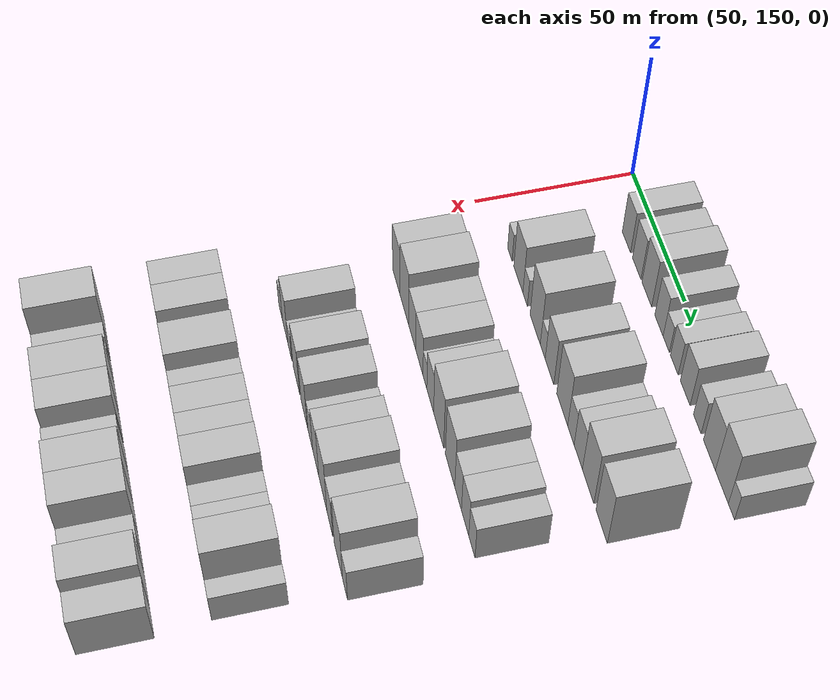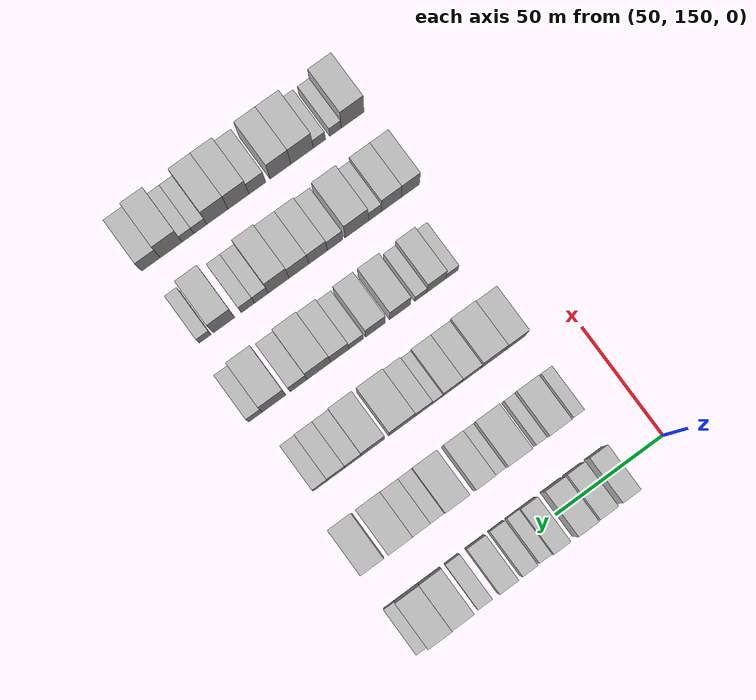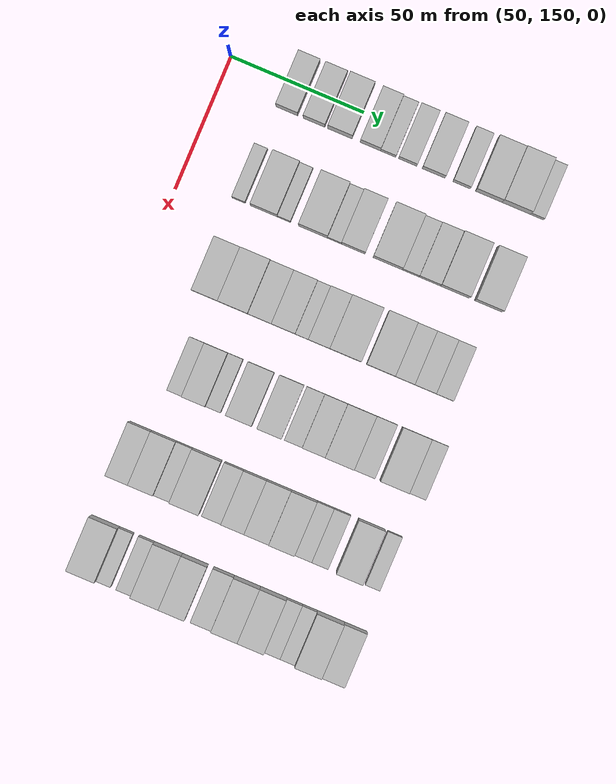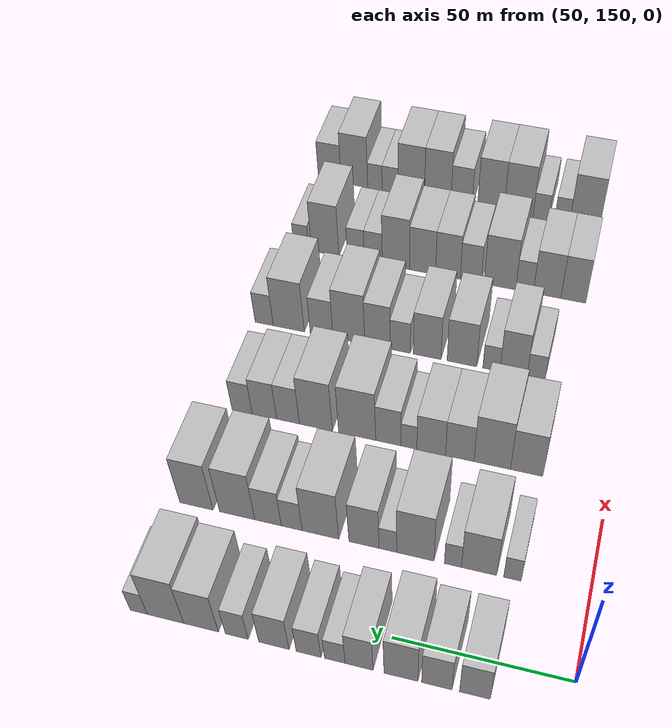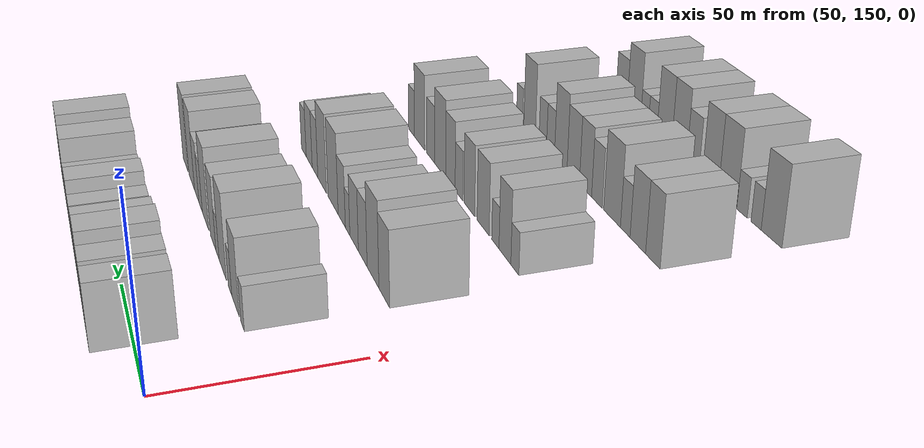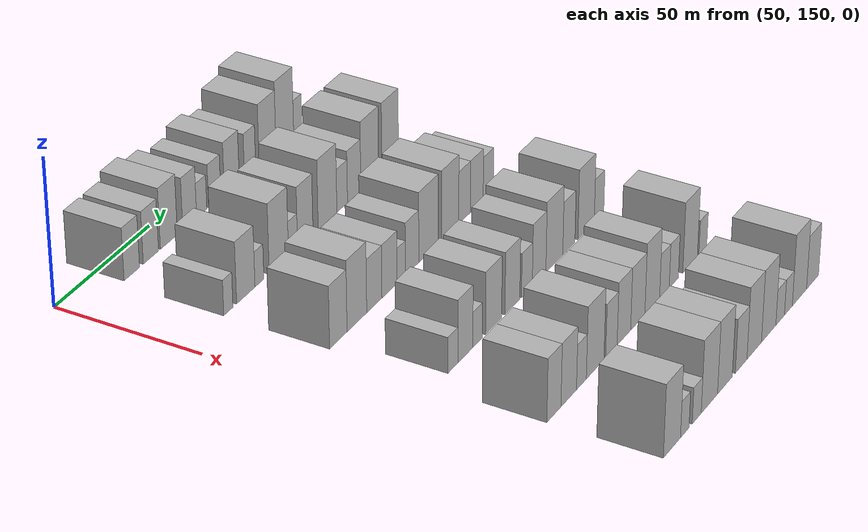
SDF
<sdf version="1.6">
 <world name="default">
  <model name="building_77">
   <static>1</static>
   <pose>50.0000 175.2107 0 0.000000 0.000000 0.000000</pose>
   <link name="link">
    <pose>0 0 9.00 0 0 0</pose>
    <collision name="collision"><geometry><box><size>20.0000 8.1973 18.0000</size></box></geometry></collision>
    <visual name="visual">
     <cast_shadows>0</cast_shadows>
     <geometry><box><size>20.0000 8.1973 18.0000</size></box></geometry>
     <material>
      <script>
       <uri>model://HANNAS_wall/materials/scripts</uri>
       <uri>model://HANNAS_wall/materials/textures</uri>
       <name>vrc/HANNAS_wall</name>
      </script>
     </material>
    </visual>
   </link>
  </model>
  <model name="building_78">
   <static>1</static>
   <pose>50.0000 185.4106 0 0.000000 0.000000 0.000000</pose>
   <link name="link">
    <pose>0 0 9.00 0 0 0</pose>
    <collision name="collision"><geometry><box><size>20.0000 8.2025 18.0000</size></box></geometry></collision>
    <visual name="visual">
     <cast_shadows>0</cast_shadows>
     <geometry><box><size>20.0000 8.2025 18.0000</size></box></geometry>
     <material>
      <script>
       <uri>model://HANNAS_wall/materials/scripts</uri>
       <uri>model://HANNAS_wall/materials/textures</uri>
       <name>vrc/HANNAS_wall</name>
      </script>
     </material>
    </visual>
   </link>
  </model>
  <model name="building_79">
   <static>1</static>
   <pose>50.0000 195.1301 0 0.000000 0.000000 0.000000</pose>
   <link name="link">
    <pose>0 0 10.50 0 0 0</pose>
    <collision name="collision"><geometry><box><size>20.0000 9.2365 21.0000</size></box></geometry></collision>
    <visual name="visual">
     <cast_shadows>0</cast_shadows>
     <geometry><box><size>20.0000 9.2365 21.0000</size></box></geometry>
     <material>
      <script>
       <uri>model://HANNAS_wall/materials/scripts</uri>
       <uri>model://HANNAS_wall/materials/textures</uri>
       <name>vrc/HANNAS_wall</name>
      </script>
     </material>
    </visual>
   </link>
  </model>
  <model name="building_80">
   <static>1</static>
   <pose>50.0000 206.5927 0 0.000000 0.000000 0.000000</pose>
   <link name="link">
    <pose>0 0 9.00 0 0 0</pose>
    <collision name="collision"><geometry><box><size>20.0000 7.6885 18.0000</size></box></geometry></collision>
    <visual name="visual">
     <cast_shadows>0</cast_shadows>
     <geometry><box><size>20.0000 7.6885 18.0000</size></box></geometry>
     <material>
      <script>
       <uri>model://HANNAS_wall/materials/scripts</uri>
       <uri>model://HANNAS_wall/materials/textures</uri>
       <name>vrc/HANNAS_wall</name>
      </script>
     </material>
    </visual>
   </link>
  </model>
  <model name="building_81">
   <static>1</static>
   <pose>50.0000 213.2928 0 0.000000 0.000000 0.000000</pose>
   <link name="link">
    <pose>0 0 6.00 0 0 0</pose>
    <collision name="collision"><geometry><box><size>20.0000 5.7117 12.0000</size></box></geometry></collision>
    <visual name="visual">
     <cast_shadows>0</cast_shadows>
     <geometry><box><size>20.0000 5.7117 12.0000</size></box></geometry>
     <material>
      <script>
       <uri>model://HANNAS_wall/materials/scripts</uri>
       <uri>model://HANNAS_wall/materials/textures</uri>
       <name>vrc/HANNAS_wall</name>
      </script>
     </material>
    </visual>
   </link>
  </model>
  <model name="building_82">
   <static>1</static>
   <pose>50.0000 220.6034 0 0.000000 0.000000 0.000000</pose>
   <link name="link">
    <pose>0 0 7.50 0 0 0</pose>
    <collision name="collision"><geometry><box><size>20.0000 6.9096 15.0000</size></box></geometry></collision>
    <visual name="visual">
     <cast_shadows>0</cast_shadows>
     <geometry><box><size>20.0000 6.9096 15.0000</size></box></geometry>
     <material>
      <script>
       <uri>model://HANNAS_wall/materials/scripts</uri>
       <uri>model://HANNAS_wall/materials/textures</uri>
       <name>vrc/HANNAS_wall</name>
      </script>
     </material>
    </visual>
   </link>
  </model>
  <model name="building_83">
   <static>1</static>
   <pose>50.0000 230.3329 0 0.000000 0.000000 0.000000</pose>
   <link name="link">
    <pose>0 0 9.00 0 0 0</pose>
    <collision name="collision"><geometry><box><size>20.0000 8.5494 18.0000</size></box></geometry></collision>
    <visual name="visual">
     <cast_shadows>0</cast_shadows>
     <geometry><box><size>20.0000 8.5494 18.0000</size></box></geometry>
     <material>
      <script>
       <uri>model://HANNAS_wall/materials/scripts</uri>
       <uri>model://HANNAS_wall/materials/textures</uri>
       <name>vrc/HANNAS_wall</name>
      </script>
     </material>
    </visual>
   </link>
  </model>
  <model name="building_84">
   <static>1</static>
   <pose>50.0000 240.8622 0 0.000000 0.000000 0.000000</pose>
   <link name="link">
    <pose>0 0 7.50 0 0 0</pose>
    <collision name="collision"><geometry><box><size>20.0000 6.5090 15.0000</size></box></geometry></collision>
    <visual name="visual">
     <cast_shadows>0</cast_shadows>
     <geometry><box><size>20.0000 6.5090 15.0000</size></box></geometry>
     <material>
      <script>
       <uri>model://HANNAS_wall/materials/scripts</uri>
       <uri>model://HANNAS_wall/materials/textures</uri>
       <name>vrc/HANNAS_wall</name>
      </script>
     </material>
    </visual>
   </link>
  </model>
  <model name="building_85">
   <static>1</static>
   <pose>50.0000 251.1097 0 0.000000 0.000000 0.000000</pose>
   <link name="link">
    <pose>0 0 10.50 0 0 0</pose>
    <collision name="collision"><geometry><box><size>20.0000 9.9861 21.0000</size></box></geometry></collision>
    <visual name="visual">
     <cast_shadows>0</cast_shadows>
     <geometry><box><size>20.0000 9.9861 21.0000</size></box></geometry>
     <material>
      <script>
       <uri>model://HANNAS_wall/materials/scripts</uri>
       <uri>model://HANNAS_wall/materials/textures</uri>
       <name>vrc/HANNAS_wall</name>
      </script>
     </material>
    </visual>
   </link>
  </model>
  <model name="building_86">
   <static>1</static>
   <pose>50.0000 261.4041 0 0.000000 0.000000 0.000000</pose>
   <link name="link">
    <pose>0 0 12.00 0 0 0</pose>
    <collision name="collision"><geometry><box><size>20.0000 10.6026 24.0000</size></box></geometry></collision>
    <visual name="visual">
     <cast_shadows>0</cast_shadows>
     <geometry><box><size>20.0000 10.6026 24.0000</size></box></geometry>
     <material>
      <script>
       <uri>model://HANNAS_wall/materials/scripts</uri>
       <uri>model://HANNAS_wall/materials/textures</uri>
       <name>vrc/HANNAS_wall</name>
      </script>
     </material>
    </visual>
   </link>
  </model>
  <model name="building_87">
   <static>1</static>
   <pose>50.0000 269.1859 0 0.000000 0.000000 0.000000</pose>
   <link name="link">
    <pose>0 0 6.00 0 0 0</pose>
    <collision name="collision"><geometry><box><size>20.0000 4.9610 12.0000</size></box></geometry></collision>
    <visual name="visual">
     <cast_shadows>0</cast_shadows>
     <geometry><box><size>20.0000 4.9610 12.0000</size></box></geometry>
     <material>
      <script>
       <uri>model://HANNAS_wall/materials/scripts</uri>
       <uri>model://HANNAS_wall/materials/textures</uri>
       <name>vrc/HANNAS_wall</name>
      </script>
     </material>
    </visual>
   </link>
  </model>
  <model name="building_210">
   <static>1</static>
   <pose>85.0000 171.9448 0 0.000000 0.000000 0.000000</pose>
   <link name="link">
    <pose>0 0 6.00 0 0 0</pose>
    <collision name="collision"><geometry><box><size>20.0000 4.9661 12.0000</size></box></geometry></collision>
    <visual name="visual">
     <cast_shadows>0</cast_shadows>
     <geometry><box><size>20.0000 4.9661 12.0000</size></box></geometry>
     <material>
      <script>
       <uri>model://HANNAS_wall/materials/scripts</uri>
       <uri>model://HANNAS_wall/materials/textures</uri>
       <name>vrc/HANNAS_wall</name>
      </script>
     </material>
    </visual>
   </link>
  </model>
  <model name="building_211">
   <static>1</static>
   <pose>85.0000 181.4668 0 0.000000 0.000000 0.000000</pose>
   <link name="link">
    <pose>0 0 10.50 0 0 0</pose>
    <collision name="collision"><geometry><box><size>20.0000 10.0780 21.0000</size></box></geometry></collision>
    <visual name="visual">
     <cast_shadows>0</cast_shadows>
     <geometry><box><size>20.0000 10.0780 21.0000</size></box></geometry>
     <material>
      <script>
       <uri>model://HANNAS_wall/materials/scripts</uri>
       <uri>model://HANNAS_wall/materials/textures</uri>
       <name>vrc/HANNAS_wall</name>
      </script>
     </material>
    </visual>
   </link>
  </model>
  <model name="building_212">
   <static>1</static>
   <pose>85.0000 188.9668 0 0.000000 0.000000 0.000000</pose>
   <link name="link">
    <pose>0 0 6.00 0 0 0</pose>
    <collision name="collision"><geometry><box><size>20.0000 4.9221 12.0000</size></box></geometry></collision>
    <visual name="visual">
     <cast_shadows>0</cast_shadows>
     <geometry><box><size>20.0000 4.9221 12.0000</size></box></geometry>
     <material>
      <script>
       <uri>model://HANNAS_wall/materials/scripts</uri>
       <uri>model://HANNAS_wall/materials/textures</uri>
       <name>vrc/HANNAS_wall</name>
      </script>
     </material>
    </visual>
   </link>
  </model>
  <model name="building_213">
   <static>1</static>
   <pose>85.0000 199.8682 0 0.000000 0.000000 0.000000</pose>
   <link name="link">
    <pose>0 0 12.00 0 0 0</pose>
    <collision name="collision"><geometry><box><size>20.0000 10.8807 24.0000</size></box></geometry></collision>
    <visual name="visual">
     <cast_shadows>0</cast_shadows>
     <geometry><box><size>20.0000 10.8807 24.0000</size></box></geometry>
     <material>
      <script>
       <uri>model://HANNAS_wall/materials/scripts</uri>
       <uri>model://HANNAS_wall/materials/textures</uri>
       <name>vrc/HANNAS_wall</name>
      </script>
     </material>
    </visual>
   </link>
  </model>
  <model name="building_214">
   <static>1</static>
   <pose>85.0000 207.9066 0 0.000000 0.000000 0.000000</pose>
   <link name="link">
    <pose>0 0 6.00 0 0 0</pose>
    <collision name="collision"><geometry><box><size>20.0000 5.1960 12.0000</size></box></geometry></collision>
    <visual name="visual">
     <cast_shadows>0</cast_shadows>
     <geometry><box><size>20.0000 5.1960 12.0000</size></box></geometry>
     <material>
      <script>
       <uri>model://HANNAS_wall/materials/scripts</uri>
       <uri>model://HANNAS_wall/materials/textures</uri>
       <name>vrc/HANNAS_wall</name>
      </script>
     </material>
    </visual>
   </link>
  </model>
  <model name="building_215">
   <static>1</static>
   <pose>85.0000 214.9555 0 0.000000 0.000000 0.000000</pose>
   <link name="link">
    <pose>0 0 10.50 0 0 0</pose>
    <collision name="collision"><geometry><box><size>20.0000 8.9018 21.0000</size></box></geometry></collision>
    <visual name="visual">
     <cast_shadows>0</cast_shadows>
     <geometry><box><size>20.0000 8.9018 21.0000</size></box></geometry>
     <material>
      <script>
       <uri>model://HANNAS_wall/materials/scripts</uri>
       <uri>model://HANNAS_wall/materials/textures</uri>
       <name>vrc/HANNAS_wall</name>
      </script>
     </material>
    </visual>
   </link>
  </model>
  <model name="building_216">
   <static>1</static>
   <pose>85.0000 227.9018 0 0.000000 0.000000 0.000000</pose>
   <link name="link">
    <pose>0 0 12.00 0 0 0</pose>
    <collision name="collision"><geometry><box><size>20.0000 10.9909 24.0000</size></box></geometry></collision>
    <visual name="visual">
     <cast_shadows>0</cast_shadows>
     <geometry><box><size>20.0000 10.9909 24.0000</size></box></geometry>
     <material>
      <script>
       <uri>model://HANNAS_wall/materials/scripts</uri>
       <uri>model://HANNAS_wall/materials/textures</uri>
       <name>vrc/HANNAS_wall</name>
      </script>
     </material>
    </visual>
   </link>
  </model>
  <model name="building_217">
   <static>1</static>
   <pose>85.0000 236.5381 0 0.000000 0.000000 0.000000</pose>
   <link name="link">
    <pose>0 0 7.50 0 0 0</pose>
    <collision name="collision"><geometry><box><size>20.0000 6.2817 15.0000</size></box></geometry></collision>
    <visual name="visual">
     <cast_shadows>0</cast_shadows>
     <geometry><box><size>20.0000 6.2817 15.0000</size></box></geometry>
     <material>
      <script>
       <uri>model://HANNAS_wall/materials/scripts</uri>
       <uri>model://HANNAS_wall/materials/textures</uri>
       <name>vrc/HANNAS_wall</name>
      </script>
     </material>
    </visual>
   </link>
  </model>
  <model name="building_218">
   <static>1</static>
   <pose>85.0000 243.7006 0 0.000000 0.000000 0.000000</pose>
   <link name="link">
    <pose>0 0 9.00 0 0 0</pose>
    <collision name="collision"><geometry><box><size>20.0000 8.0432 18.0000</size></box></geometry></collision>
    <visual name="visual">
     <cast_shadows>0</cast_shadows>
     <geometry><box><size>20.0000 8.0432 18.0000</size></box></geometry>
     <material>
      <script>
       <uri>model://HANNAS_wall/materials/scripts</uri>
       <uri>model://HANNAS_wall/materials/textures</uri>
       <name>vrc/HANNAS_wall</name>
      </script>
     </material>
    </visual>
   </link>
  </model>
  <model name="building_219">
   <static>1</static>
   <pose>85.0000 253.1313 0 0.000000 0.000000 0.000000</pose>
   <link name="link">
    <pose>0 0 12.00 0 0 0</pose>
    <collision name="collision"><geometry><box><size>20.0000 10.8182 24.0000</size></box></geometry></collision>
    <visual name="visual">
     <cast_shadows>0</cast_shadows>
     <geometry><box><size>20.0000 10.8182 24.0000</size></box></geometry>
     <material>
      <script>
       <uri>model://HANNAS_wall/materials/scripts</uri>
       <uri>model://HANNAS_wall/materials/textures</uri>
       <name>vrc/HANNAS_wall</name>
      </script>
     </material>
    </visual>
   </link>
  </model>
  <model name="building_220">
   <static>1</static>
   <pose>85.0000 265.6946 0 0.000000 0.000000 0.000000</pose>
   <link name="link">
    <pose>0 0 12.00 0 0 0</pose>
    <collision name="collision"><geometry><box><size>20.0000 10.3085 24.0000</size></box></geometry></collision>
    <visual name="visual">
     <cast_shadows>0</cast_shadows>
     <geometry><box><size>20.0000 10.3085 24.0000</size></box></geometry>
     <material>
      <script>
       <uri>model://HANNAS_wall/materials/scripts</uri>
       <uri>model://HANNAS_wall/materials/textures</uri>
       <name>vrc/HANNAS_wall</name>
      </script>
     </material>
    </visual>
   </link>
  </model>
  <model name="building_329">
   <static>1</static>
   <pose>120.0000 174.3376 0 0.000000 0.000000 0.000000</pose>
   <link name="link">
    <pose>0 0 10.50 0 0 0</pose>
    <collision name="collision"><geometry><box><size>20.0000 9.7893 21.0000</size></box></geometry></collision>
    <visual name="visual">
     <cast_shadows>0</cast_shadows>
     <geometry><box><size>20.0000 9.7893 21.0000</size></box></geometry>
     <material>
      <script>
       <uri>model://HANNAS_wall/materials/scripts</uri>
       <uri>model://HANNAS_wall/materials/textures</uri>
       <name>vrc/HANNAS_wall</name>
      </script>
     </material>
    </visual>
   </link>
  </model>
  <model name="building_330">
   <static>1</static>
   <pose>120.0000 184.8171 0 0.000000 0.000000 0.000000</pose>
   <link name="link">
    <pose>0 0 12.00 0 0 0</pose>
    <collision name="collision"><geometry><box><size>20.0000 11.1698 24.0000</size></box></geometry></collision>
    <visual name="visual">
     <cast_shadows>0</cast_shadows>
     <geometry><box><size>20.0000 11.1698 24.0000</size></box></geometry>
     <material>
      <script>
       <uri>model://HANNAS_wall/materials/scripts</uri>
       <uri>model://HANNAS_wall/materials/textures</uri>
       <name>vrc/HANNAS_wall</name>
      </script>
     </material>
    </visual>
   </link>
  </model>
  <model name="building_331">
   <static>1</static>
   <pose>120.0000 194.7699 0 0.000000 0.000000 0.000000</pose>
   <link name="link">
    <pose>0 0 9.00 0 0 0</pose>
    <collision name="collision"><geometry><box><size>20.0000 8.7357 18.0000</size></box></geometry></collision>
    <visual name="visual">
     <cast_shadows>0</cast_shadows>
     <geometry><box><size>20.0000 8.7357 18.0000</size></box></geometry>
     <material>
      <script>
       <uri>model://HANNAS_wall/materials/scripts</uri>
       <uri>model://HANNAS_wall/materials/textures</uri>
       <name>vrc/HANNAS_wall</name>
      </script>
     </material>
    </visual>
   </link>
  </model>
  <model name="building_332">
   <static>1</static>
   <pose>120.0000 203.5922 0 0.000000 0.000000 0.000000</pose>
   <link name="link">
    <pose>0 0 9.00 0 0 0</pose>
    <collision name="collision"><geometry><box><size>20.0000 8.9089 18.0000</size></box></geometry></collision>
    <visual name="visual">
     <cast_shadows>0</cast_shadows>
     <geometry><box><size>20.0000 8.9089 18.0000</size></box></geometry>
     <material>
      <script>
       <uri>model://HANNAS_wall/materials/scripts</uri>
       <uri>model://HANNAS_wall/materials/textures</uri>
       <name>vrc/HANNAS_wall</name>
      </script>
     </material>
    </visual>
   </link>
  </model>
  <model name="building_333">
   <static>1</static>
   <pose>120.0000 210.4878 0 0.000000 0.000000 0.000000</pose>
   <link name="link">
    <pose>0 0 6.00 0 0 0</pose>
    <collision name="collision"><geometry><box><size>20.0000 4.8824 12.0000</size></box></geometry></collision>
    <visual name="visual">
     <cast_shadows>0</cast_shadows>
     <geometry><box><size>20.0000 4.8824 12.0000</size></box></geometry>
     <material>
      <script>
       <uri>model://HANNAS_wall/materials/scripts</uri>
       <uri>model://HANNAS_wall/materials/textures</uri>
       <name>vrc/HANNAS_wall</name>
      </script>
     </material>
    </visual>
   </link>
  </model>
  <model name="building_334">
   <static>1</static>
   <pose>120.0000 216.9383 0 0.000000 0.000000 0.000000</pose>
   <link name="link">
    <pose>0 0 9.00 0 0 0</pose>
    <collision name="collision"><geometry><box><size>20.0000 8.0185 18.0000</size></box></geometry></collision>
    <visual name="visual">
     <cast_shadows>0</cast_shadows>
     <geometry><box><size>20.0000 8.0185 18.0000</size></box></geometry>
     <material>
      <script>
       <uri>model://HANNAS_wall/materials/scripts</uri>
       <uri>model://HANNAS_wall/materials/textures</uri>
       <name>vrc/HANNAS_wall</name>
      </script>
     </material>
    </visual>
   </link>
  </model>
  <model name="building_335">
   <static>1</static>
   <pose>120.0000 226.8157 0 0.000000 0.000000 0.000000</pose>
   <link name="link">
    <pose>0 0 12.00 0 0 0</pose>
    <collision name="collision"><geometry><box><size>20.0000 11.7364 24.0000</size></box></geometry></collision>
    <visual name="visual">
     <cast_shadows>0</cast_shadows>
     <geometry><box><size>20.0000 11.7364 24.0000</size></box></geometry>
     <material>
      <script>
       <uri>model://HANNAS_wall/materials/scripts</uri>
       <uri>model://HANNAS_wall/materials/textures</uri>
       <name>vrc/HANNAS_wall</name>
      </script>
     </material>
    </visual>
   </link>
  </model>
  <model name="building_336">
   <static>1</static>
   <pose>120.0000 239.9857 0 0.000000 0.000000 0.000000</pose>
   <link name="link">
    <pose>0 0 12.00 0 0 0</pose>
    <collision name="collision"><geometry><box><size>20.0000 10.6036 24.0000</size></box></geometry></collision>
    <visual name="visual">
     <cast_shadows>0</cast_shadows>
     <geometry><box><size>20.0000 10.6036 24.0000</size></box></geometry>
     <material>
      <script>
       <uri>model://HANNAS_wall/materials/scripts</uri>
       <uri>model://HANNAS_wall/materials/textures</uri>
       <name>vrc/HANNAS_wall</name>
      </script>
     </material>
    </visual>
   </link>
  </model>
  <model name="building_337">
   <static>1</static>
   <pose>120.0000 248.9544 0 0.000000 0.000000 0.000000</pose>
   <link name="link">
    <pose>0 0 9.00 0 0 0</pose>
    <collision name="collision"><geometry><box><size>20.0000 7.3338 18.0000</size></box></geometry></collision>
    <visual name="visual">
     <cast_shadows>0</cast_shadows>
     <geometry><box><size>20.0000 7.3338 18.0000</size></box></geometry>
     <material>
      <script>
       <uri>model://HANNAS_wall/materials/scripts</uri>
       <uri>model://HANNAS_wall/materials/textures</uri>
       <name>vrc/HANNAS_wall</name>
      </script>
     </material>
    </visual>
   </link>
  </model>
  <model name="building_338">
   <static>1</static>
   <pose>120.0000 256.6154 0 0.000000 0.000000 0.000000</pose>
   <link name="link">
    <pose>0 0 9.00 0 0 0</pose>
    <collision name="collision"><geometry><box><size>20.0000 7.9882 18.0000</size></box></geometry></collision>
    <visual name="visual">
     <cast_shadows>0</cast_shadows>
     <geometry><box><size>20.0000 7.9882 18.0000</size></box></geometry>
     <material>
      <script>
       <uri>model://HANNAS_wall/materials/scripts</uri>
       <uri>model://HANNAS_wall/materials/textures</uri>
       <name>vrc/HANNAS_wall</name>
      </script>
     </material>
    </visual>
   </link>
  </model>
  <model name="building_339">
   <static>1</static>
   <pose>120.0000 263.9034 0 0.000000 0.000000 0.000000</pose>
   <link name="link">
    <pose>0 0 7.50 0 0 0</pose>
    <collision name="collision"><geometry><box><size>20.0000 6.5879 15.0000</size></box></geometry></collision>
    <visual name="visual">
     <cast_shadows>0</cast_shadows>
     <geometry><box><size>20.0000 6.5879 15.0000</size></box></geometry>
     <material>
      <script>
       <uri>model://HANNAS_wall/materials/scripts</uri>
       <uri>model://HANNAS_wall/materials/textures</uri>
       <name>vrc/HANNAS_wall</name>
      </script>
     </material>
    </visual>
   </link>
  </model>
  <model name="building_450">
   <static>1</static>
   <pose>155.0000 177.7484 0 0.000000 0.000000 0.000000</pose>
   <link name="link">
    <pose>0 0 6.00 0 0 0</pose>
    <collision name="collision"><geometry><box><size>20.0000 5.7526 12.0000</size></box></geometry></collision>
    <visual name="visual">
     <cast_shadows>0</cast_shadows>
     <geometry><box><size>20.0000 5.7526 12.0000</size></box></geometry>
     <material>
      <script>
       <uri>model://HANNAS_wall/materials/scripts</uri>
       <uri>model://HANNAS_wall/materials/textures</uri>
       <name>vrc/HANNAS_wall</name>
      </script>
     </material>
    </visual>
   </link>
  </model>
  <model name="building_451">
   <static>1</static>
   <pose>155.0000 185.0141 0 0.000000 0.000000 0.000000</pose>
   <link name="link">
    <pose>0 0 10.50 0 0 0</pose>
    <collision name="collision"><geometry><box><size>20.0000 8.7788 21.0000</size></box></geometry></collision>
    <visual name="visual">
     <cast_shadows>0</cast_shadows>
     <geometry><box><size>20.0000 8.7788 21.0000</size></box></geometry>
     <material>
      <script>
       <uri>model://HANNAS_wall/materials/scripts</uri>
       <uri>model://HANNAS_wall/materials/textures</uri>
       <name>vrc/HANNAS_wall</name>
      </script>
     </material>
    </visual>
   </link>
  </model>
  <model name="building_452">
   <static>1</static>
   <pose>155.0000 192.1810 0 0.000000 0.000000 0.000000</pose>
   <link name="link">
    <pose>0 0 6.00 0 0 0</pose>
    <collision name="collision"><geometry><box><size>20.0000 5.5550 12.0000</size></box></geometry></collision>
    <visual name="visual">
     <cast_shadows>0</cast_shadows>
     <geometry><box><size>20.0000 5.5550 12.0000</size></box></geometry>
     <material>
      <script>
       <uri>model://HANNAS_wall/materials/scripts</uri>
       <uri>model://HANNAS_wall/materials/textures</uri>
       <name>vrc/HANNAS_wall</name>
      </script>
     </material>
    </visual>
   </link>
  </model>
  <model name="building_453">
   <static>1</static>
   <pose>155.0000 201.8083 0 0.000000 0.000000 0.000000</pose>
   <link name="link">
    <pose>0 0 10.50 0 0 0</pose>
    <collision name="collision"><geometry><box><size>20.0000 9.6996 21.0000</size></box></geometry></collision>
    <visual name="visual">
     <cast_shadows>0</cast_shadows>
     <geometry><box><size>20.0000 9.6996 21.0000</size></box></geometry>
     <material>
      <script>
       <uri>model://HANNAS_wall/materials/scripts</uri>
       <uri>model://HANNAS_wall/materials/textures</uri>
       <name>vrc/HANNAS_wall</name>
      </script>
     </material>
    </visual>
   </link>
  </model>
  <model name="building_454">
   <static>1</static>
   <pose>155.0000 213.2307 0 0.000000 0.000000 0.000000</pose>
   <link name="link">
    <pose>0 0 10.50 0 0 0</pose>
    <collision name="collision"><geometry><box><size>20.0000 9.1452 21.0000</size></box></geometry></collision>
    <visual name="visual">
     <cast_shadows>0</cast_shadows>
     <geometry><box><size>20.0000 9.1452 21.0000</size></box></geometry>
     <material>
      <script>
       <uri>model://HANNAS_wall/materials/scripts</uri>
       <uri>model://HANNAS_wall/materials/textures</uri>
       <name>vrc/HANNAS_wall</name>
      </script>
     </material>
    </visual>
   </link>
  </model>
  <model name="building_455">
   <static>1</static>
   <pose>155.0000 222.1620 0 0.000000 0.000000 0.000000</pose>
   <link name="link">
    <pose>0 0 7.50 0 0 0</pose>
    <collision name="collision"><geometry><box><size>20.0000 6.7174 15.0000</size></box></geometry></collision>
    <visual name="visual">
     <cast_shadows>0</cast_shadows>
     <geometry><box><size>20.0000 6.7174 15.0000</size></box></geometry>
     <material>
      <script>
       <uri>model://HANNAS_wall/materials/scripts</uri>
       <uri>model://HANNAS_wall/materials/textures</uri>
       <name>vrc/HANNAS_wall</name>
      </script>
     </material>
    </visual>
   </link>
  </model>
  <model name="building_456">
   <static>1</static>
   <pose>155.0000 229.7882 0 0.000000 0.000000 0.000000</pose>
   <link name="link">
    <pose>0 0 10.50 0 0 0</pose>
    <collision name="collision"><geometry><box><size>20.0000 8.5350 21.0000</size></box></geometry></collision>
    <visual name="visual">
     <cast_shadows>0</cast_shadows>
     <geometry><box><size>20.0000 8.5350 21.0000</size></box></geometry>
     <material>
      <script>
       <uri>model://HANNAS_wall/materials/scripts</uri>
       <uri>model://HANNAS_wall/materials/textures</uri>
       <name>vrc/HANNAS_wall</name>
      </script>
     </material>
    </visual>
   </link>
  </model>
  <model name="building_457">
   <static>1</static>
   <pose>155.0000 239.4377 0 0.000000 0.000000 0.000000</pose>
   <link name="link">
    <pose>0 0 12.00 0 0 0</pose>
    <collision name="collision"><geometry><box><size>20.0000 10.7641 24.0000</size></box></geometry></collision>
    <visual name="visual">
     <cast_shadows>0</cast_shadows>
     <geometry><box><size>20.0000 10.7641 24.0000</size></box></geometry>
     <material>
      <script>
       <uri>model://HANNAS_wall/materials/scripts</uri>
       <uri>model://HANNAS_wall/materials/textures</uri>
       <name>vrc/HANNAS_wall</name>
      </script>
     </material>
    </visual>
   </link>
  </model>
  <model name="building_458">
   <static>1</static>
   <pose>155.0000 248.7163 0 0.000000 0.000000 0.000000</pose>
   <link name="link">
    <pose>0 0 9.00 0 0 0</pose>
    <collision name="collision"><geometry><box><size>20.0000 7.7931 18.0000</size></box></geometry></collision>
    <visual name="visual">
     <cast_shadows>0</cast_shadows>
     <geometry><box><size>20.0000 7.7931 18.0000</size></box></geometry>
     <material>
      <script>
       <uri>model://HANNAS_wall/materials/scripts</uri>
       <uri>model://HANNAS_wall/materials/textures</uri>
       <name>vrc/HANNAS_wall</name>
      </script>
     </material>
    </visual>
   </link>
  </model>
  <model name="building_459">
   <static>1</static>
   <pose>155.0000 259.9588 0 0.000000 0.000000 0.000000</pose>
   <link name="link">
    <pose>0 0 12.00 0 0 0</pose>
    <collision name="collision"><geometry><box><size>20.0000 10.6918 24.0000</size></box></geometry></collision>
    <visual name="visual">
     <cast_shadows>0</cast_shadows>
     <geometry><box><size>20.0000 10.6918 24.0000</size></box></geometry>
     <material>
      <script>
       <uri>model://HANNAS_wall/materials/scripts</uri>
       <uri>model://HANNAS_wall/materials/textures</uri>
       <name>vrc/HANNAS_wall</name>
      </script>
     </material>
    </visual>
   </link>
  </model>
  <model name="building_460">
   <static>1</static>
   <pose>155.0000 268.4652 0 0.000000 0.000000 0.000000</pose>
   <link name="link">
    <pose>0 0 7.50 0 0 0</pose>
    <collision name="collision"><geometry><box><size>20.0000 6.3209 15.0000</size></box></geometry></collision>
    <visual name="visual">
     <cast_shadows>0</cast_shadows>
     <geometry><box><size>20.0000 6.3209 15.0000</size></box></geometry>
     <material>
      <script>
       <uri>model://HANNAS_wall/materials/scripts</uri>
       <uri>model://HANNAS_wall/materials/textures</uri>
       <name>vrc/HANNAS_wall</name>
      </script>
     </material>
    </visual>
   </link>
  </model>
  <model name="building_574">
   <static>1</static>
   <pose>190.0000 171.3165 0 0.000000 0.000000 0.000000</pose>
   <link name="link">
    <pose>0 0 10.50 0 0 0</pose>
    <collision name="collision"><geometry><box><size>20.0000 8.4124 21.0000</size></box></geometry></collision>
    <visual name="visual">
     <cast_shadows>0</cast_shadows>
     <geometry><box><size>20.0000 8.4124 21.0000</size></box></geometry>
     <material>
      <script>
       <uri>model://HANNAS_wall/materials/scripts</uri>
       <uri>model://HANNAS_wall/materials/textures</uri>
       <name>vrc/HANNAS_wall</name>
      </script>
     </material>
    </visual>
   </link>
  </model>
  <model name="building_575">
   <static>1</static>
   <pose>190.0000 180.2094 0 0.000000 0.000000 0.000000</pose>
   <link name="link">
    <pose>0 0 10.50 0 0 0</pose>
    <collision name="collision"><geometry><box><size>20.0000 9.3733 21.0000</size></box></geometry></collision>
    <visual name="visual">
     <cast_shadows>0</cast_shadows>
     <geometry><box><size>20.0000 9.3733 21.0000</size></box></geometry>
     <material>
      <script>
       <uri>model://HANNAS_wall/materials/scripts</uri>
       <uri>model://HANNAS_wall/materials/textures</uri>
       <name>vrc/HANNAS_wall</name>
      </script>
     </material>
    </visual>
   </link>
  </model>
  <model name="building_576">
   <static>1</static>
   <pose>190.0000 187.9095 0 0.000000 0.000000 0.000000</pose>
   <link name="link">
    <pose>0 0 7.50 0 0 0</pose>
    <collision name="collision"><geometry><box><size>20.0000 6.0270 15.0000</size></box></geometry></collision>
    <visual name="visual">
     <cast_shadows>0</cast_shadows>
     <geometry><box><size>20.0000 6.0270 15.0000</size></box></geometry>
     <material>
      <script>
       <uri>model://HANNAS_wall/materials/scripts</uri>
       <uri>model://HANNAS_wall/materials/textures</uri>
       <name>vrc/HANNAS_wall</name>
      </script>
     </material>
    </visual>
   </link>
  </model>
  <model name="building_577">
   <static>1</static>
   <pose>190.0000 196.3888 0 0.000000 0.000000 0.000000</pose>
   <link name="link">
    <pose>0 0 12.00 0 0 0</pose>
    <collision name="collision"><geometry><box><size>20.0000 10.9315 24.0000</size></box></geometry></collision>
    <visual name="visual">
     <cast_shadows>0</cast_shadows>
     <geometry><box><size>20.0000 10.9315 24.0000</size></box></geometry>
     <material>
      <script>
       <uri>model://HANNAS_wall/materials/scripts</uri>
       <uri>model://HANNAS_wall/materials/textures</uri>
       <name>vrc/HANNAS_wall</name>
      </script>
     </material>
    </visual>
   </link>
  </model>
  <model name="building_578">
   <static>1</static>
   <pose>190.0000 206.4728 0 0.000000 0.000000 0.000000</pose>
   <link name="link">
    <pose>0 0 9.00 0 0 0</pose>
    <collision name="collision"><geometry><box><size>20.0000 7.2365 18.0000</size></box></geometry></collision>
    <visual name="visual">
     <cast_shadows>0</cast_shadows>
     <geometry><box><size>20.0000 7.2365 18.0000</size></box></geometry>
     <material>
      <script>
       <uri>model://HANNAS_wall/materials/scripts</uri>
       <uri>model://HANNAS_wall/materials/textures</uri>
       <name>vrc/HANNAS_wall</name>
      </script>
     </material>
    </visual>
   </link>
  </model>
  <model name="building_579">
   <static>1</static>
   <pose>190.0000 214.3994 0 0.000000 0.000000 0.000000</pose>
   <link name="link">
    <pose>0 0 10.50 0 0 0</pose>
    <collision name="collision"><geometry><box><size>20.0000 8.6168 21.0000</size></box></geometry></collision>
    <visual name="visual">
     <cast_shadows>0</cast_shadows>
     <geometry><box><size>20.0000 8.6168 21.0000</size></box></geometry>
     <material>
      <script>
       <uri>model://HANNAS_wall/materials/scripts</uri>
       <uri>model://HANNAS_wall/materials/textures</uri>
       <name>vrc/HANNAS_wall</name>
      </script>
     </material>
    </visual>
   </link>
  </model>
  <model name="building_580">
   <static>1</static>
   <pose>190.0000 223.3030 0 0.000000 0.000000 0.000000</pose>
   <link name="link">
    <pose>0 0 10.50 0 0 0</pose>
    <collision name="collision"><geometry><box><size>20.0000 9.1903 21.0000</size></box></geometry></collision>
    <visual name="visual">
     <cast_shadows>0</cast_shadows>
     <geometry><box><size>20.0000 9.1903 21.0000</size></box></geometry>
     <material>
      <script>
       <uri>model://HANNAS_wall/materials/scripts</uri>
       <uri>model://HANNAS_wall/materials/textures</uri>
       <name>vrc/HANNAS_wall</name>
      </script>
     </material>
    </visual>
   </link>
  </model>
  <model name="building_581">
   <static>1</static>
   <pose>190.0000 232.7185 0 0.000000 0.000000 0.000000</pose>
   <link name="link">
    <pose>0 0 12.00 0 0 0</pose>
    <collision name="collision"><geometry><box><size>20.0000 9.6407 24.0000</size></box></geometry></collision>
    <visual name="visual">
     <cast_shadows>0</cast_shadows>
     <geometry><box><size>20.0000 9.6407 24.0000</size></box></geometry>
     <material>
      <script>
       <uri>model://HANNAS_wall/materials/scripts</uri>
       <uri>model://HANNAS_wall/materials/textures</uri>
       <name>vrc/HANNAS_wall</name>
      </script>
     </material>
    </visual>
   </link>
  </model>
  <model name="building_582">
   <static>1</static>
   <pose>190.0000 240.7155 0 0.000000 0.000000 0.000000</pose>
   <link name="link">
    <pose>0 0 7.50 0 0 0</pose>
    <collision name="collision"><geometry><box><size>20.0000 6.3534 15.0000</size></box></geometry></collision>
    <visual name="visual">
     <cast_shadows>0</cast_shadows>
     <geometry><box><size>20.0000 6.3534 15.0000</size></box></geometry>
     <material>
      <script>
       <uri>model://HANNAS_wall/materials/scripts</uri>
       <uri>model://HANNAS_wall/materials/textures</uri>
       <name>vrc/HANNAS_wall</name>
      </script>
     </material>
    </visual>
   </link>
  </model>
  <model name="building_583">
   <static>1</static>
   <pose>190.0000 246.9563 0 0.000000 0.000000 0.000000</pose>
   <link name="link">
    <pose>0 0 7.50 0 0 0</pose>
    <collision name="collision"><geometry><box><size>20.0000 6.1281 15.0000</size></box></geometry></collision>
    <visual name="visual">
     <cast_shadows>0</cast_shadows>
     <geometry><box><size>20.0000 6.1281 15.0000</size></box></geometry>
     <material>
      <script>
       <uri>model://HANNAS_wall/materials/scripts</uri>
       <uri>model://HANNAS_wall/materials/textures</uri>
       <name>vrc/HANNAS_wall</name>
      </script>
     </material>
    </visual>
   </link>
  </model>
  <model name="building_584">
   <static>1</static>
   <pose>190.0000 257.9794 0 0.000000 0.000000 0.000000</pose>
   <link name="link">
    <pose>0 0 12.00 0 0 0</pose>
    <collision name="collision"><geometry><box><size>20.0000 9.9182 24.0000</size></box></geometry></collision>
    <visual name="visual">
     <cast_shadows>0</cast_shadows>
     <geometry><box><size>20.0000 9.9182 24.0000</size></box></geometry>
     <material>
      <script>
       <uri>model://HANNAS_wall/materials/scripts</uri>
       <uri>model://HANNAS_wall/materials/textures</uri>
       <name>vrc/HANNAS_wall</name>
      </script>
     </material>
    </visual>
   </link>
  </model>
  <model name="building_585">
   <static>1</static>
   <pose>190.0000 266.6471 0 0.000000 0.000000 0.000000</pose>
   <link name="link">
    <pose>0 0 6.00 0 0 0</pose>
    <collision name="collision"><geometry><box><size>20.0000 5.4172 12.0000</size></box></geometry></collision>
    <visual name="visual">
     <cast_shadows>0</cast_shadows>
     <geometry><box><size>20.0000 5.4172 12.0000</size></box></geometry>
     <material>
      <script>
       <uri>model://HANNAS_wall/materials/scripts</uri>
       <uri>model://HANNAS_wall/materials/textures</uri>
       <name>vrc/HANNAS_wall</name>
      </script>
     </material>
    </visual>
   </link>
  </model>
  <model name="building_707">
   <static>1</static>
   <pose>225.0000 172.8704 0 0.000000 0.000000 0.000000</pose>
   <link name="link">
    <pose>0 0 12.00 0 0 0</pose>
    <collision name="collision"><geometry><box><size>20.0000 10.6254 24.0000</size></box></geometry></collision>
    <visual name="visual">
     <cast_shadows>0</cast_shadows>
     <geometry><box><size>20.0000 10.6254 24.0000</size></box></geometry>
     <material>
      <script>
       <uri>model://HANNAS_wall/materials/scripts</uri>
       <uri>model://HANNAS_wall/materials/textures</uri>
       <name>vrc/HANNAS_wall</name>
      </script>
     </material>
    </visual>
   </link>
  </model>
  <model name="building_708">
   <static>1</static>
   <pose>225.0000 180.8717 0 0.000000 0.000000 0.000000</pose>
   <link name="link">
    <pose>0 0 6.00 0 0 0</pose>
    <collision name="collision"><geometry><box><size>20.0000 5.3772 12.0000</size></box></geometry></collision>
    <visual name="visual">
     <cast_shadows>0</cast_shadows>
     <geometry><box><size>20.0000 5.3772 12.0000</size></box></geometry>
     <material>
      <script>
       <uri>model://HANNAS_wall/materials/scripts</uri>
       <uri>model://HANNAS_wall/materials/textures</uri>
       <name>vrc/HANNAS_wall</name>
      </script>
     </material>
    </visual>
   </link>
  </model>
  <model name="building_709">
   <static>1</static>
   <pose>225.0000 188.4300 0 0.000000 0.000000 0.000000</pose>
   <link name="link">
    <pose>0 0 6.00 0 0 0</pose>
    <collision name="collision"><geometry><box><size>20.0000 5.7395 12.0000</size></box></geometry></collision>
    <visual name="visual">
     <cast_shadows>0</cast_shadows>
     <geometry><box><size>20.0000 5.7395 12.0000</size></box></geometry>
     <material>
      <script>
       <uri>model://HANNAS_wall/materials/scripts</uri>
       <uri>model://HANNAS_wall/materials/textures</uri>
       <name>vrc/HANNAS_wall</name>
      </script>
     </material>
    </visual>
   </link>
  </model>
  <model name="building_710">
   <static>1</static>
   <pose>225.0000 196.5692 0 0.000000 0.000000 0.000000</pose>
   <link name="link">
    <pose>0 0 12.00 0 0 0</pose>
    <collision name="collision"><geometry><box><size>20.0000 10.5390 24.0000</size></box></geometry></collision>
    <visual name="visual">
     <cast_shadows>0</cast_shadows>
     <geometry><box><size>20.0000 10.5390 24.0000</size></box></geometry>
     <material>
      <script>
       <uri>model://HANNAS_wall/materials/scripts</uri>
       <uri>model://HANNAS_wall/materials/textures</uri>
       <name>vrc/HANNAS_wall</name>
      </script>
     </material>
    </visual>
   </link>
  </model>
  <model name="building_711">
   <static>1</static>
   <pose>225.0000 206.6619 0 0.000000 0.000000 0.000000</pose>
   <link name="link">
    <pose>0 0 12.00 0 0 0</pose>
    <collision name="collision"><geometry><box><size>20.0000 9.6465 24.0000</size></box></geometry></collision>
    <visual name="visual">
     <cast_shadows>0</cast_shadows>
     <geometry><box><size>20.0000 9.6465 24.0000</size></box></geometry>
     <material>
      <script>
       <uri>model://HANNAS_wall/materials/scripts</uri>
       <uri>model://HANNAS_wall/materials/textures</uri>
       <name>vrc/HANNAS_wall</name>
      </script>
     </material>
    </visual>
   </link>
  </model>
  <model name="building_712">
   <static>1</static>
   <pose>225.0000 217.3675 0 0.000000 0.000000 0.000000</pose>
   <link name="link">
    <pose>0 0 9.00 0 0 0</pose>
    <collision name="collision"><geometry><box><size>20.0000 7.7645 18.0000</size></box></geometry></collision>
    <visual name="visual">
     <cast_shadows>0</cast_shadows>
     <geometry><box><size>20.0000 7.7645 18.0000</size></box></geometry>
     <material>
      <script>
       <uri>model://HANNAS_wall/materials/scripts</uri>
       <uri>model://HANNAS_wall/materials/textures</uri>
       <name>vrc/HANNAS_wall</name>
      </script>
     </material>
    </visual>
   </link>
  </model>
  <model name="building_713">
   <static>1</static>
   <pose>225.0000 226.1541 0 0.000000 0.000000 0.000000</pose>
   <link name="link">
    <pose>0 0 12.00 0 0 0</pose>
    <collision name="collision"><geometry><box><size>20.0000 9.8088 24.0000</size></box></geometry></collision>
    <visual name="visual">
     <cast_shadows>0</cast_shadows>
     <geometry><box><size>20.0000 9.8088 24.0000</size></box></geometry>
     <material>
      <script>
       <uri>model://HANNAS_wall/materials/scripts</uri>
       <uri>model://HANNAS_wall/materials/textures</uri>
       <name>vrc/HANNAS_wall</name>
      </script>
     </material>
    </visual>
   </link>
  </model>
  <model name="building_714">
   <static>1</static>
   <pose>225.0000 235.9948 0 0.000000 0.000000 0.000000</pose>
   <link name="link">
    <pose>0 0 12.00 0 0 0</pose>
    <collision name="collision"><geometry><box><size>20.0000 9.8725 24.0000</size></box></geometry></collision>
    <visual name="visual">
     <cast_shadows>0</cast_shadows>
     <geometry><box><size>20.0000 9.8725 24.0000</size></box></geometry>
     <material>
      <script>
       <uri>model://HANNAS_wall/materials/scripts</uri>
       <uri>model://HANNAS_wall/materials/textures</uri>
       <name>vrc/HANNAS_wall</name>
      </script>
     </material>
    </visual>
   </link>
  </model>
  <model name="building_715">
   <static>1</static>
   <pose>225.0000 243.9112 0 0.000000 0.000000 0.000000</pose>
   <link name="link">
    <pose>0 0 6.00 0 0 0</pose>
    <collision name="collision"><geometry><box><size>20.0000 5.9603 12.0000</size></box></geometry></collision>
    <visual name="visual">
     <cast_shadows>0</cast_shadows>
     <geometry><box><size>20.0000 5.9603 12.0000</size></box></geometry>
     <material>
      <script>
       <uri>model://HANNAS_wall/materials/scripts</uri>
       <uri>model://HANNAS_wall/materials/textures</uri>
       <name>vrc/HANNAS_wall</name>
      </script>
     </material>
    </visual>
   </link>
  </model>
  <model name="building_716">
   <static>1</static>
   <pose>225.0000 249.6413 0 0.000000 0.000000 0.000000</pose>
   <link name="link">
    <pose>0 0 6.00 0 0 0</pose>
    <collision name="collision"><geometry><box><size>20.0000 5.4998 12.0000</size></box></geometry></collision>
    <visual name="visual">
     <cast_shadows>0</cast_shadows>
     <geometry><box><size>20.0000 5.4998 12.0000</size></box></geometry>
     <material>
      <script>
       <uri>model://HANNAS_wall/materials/scripts</uri>
       <uri>model://HANNAS_wall/materials/textures</uri>
       <name>vrc/HANNAS_wall</name>
      </script>
     </material>
    </visual>
   </link>
  </model>
  <model name="building_717">
   <static>1</static>
   <pose>225.0000 257.4289 0 0.000000 0.000000 0.000000</pose>
   <link name="link">
    <pose>0 0 12.00 0 0 0</pose>
    <collision name="collision"><geometry><box><size>20.0000 10.0754 24.0000</size></box></geometry></collision>
    <visual name="visual">
     <cast_shadows>0</cast_shadows>
     <geometry><box><size>20.0000 10.0754 24.0000</size></box></geometry>
     <material>
      <script>
       <uri>model://HANNAS_wall/materials/scripts</uri>
       <uri>model://HANNAS_wall/materials/textures</uri>
       <name>vrc/HANNAS_wall</name>
      </script>
     </material>
    </visual>
   </link>
  </model>
  <model name="building_718">
   <static>1</static>
   <pose>225.0000 266.7642 0 0.000000 0.000000 0.000000</pose>
   <link name="link">
    <pose>0 0 9.00 0 0 0</pose>
    <collision name="collision"><geometry><box><size>20.0000 8.5952 18.0000</size></box></geometry></collision>
    <visual name="visual">
     <cast_shadows>0</cast_shadows>
     <geometry><box><size>20.0000 8.5952 18.0000</size></box></geometry>
     <material>
      <script>
       <uri>model://HANNAS_wall/materials/scripts</uri>
       <uri>model://HANNAS_wall/materials/textures</uri>
       <name>vrc/HANNAS_wall</name>
      </script>
     </material>
    </visual>
   </link>
  </model>
 </world>
</sdf>
